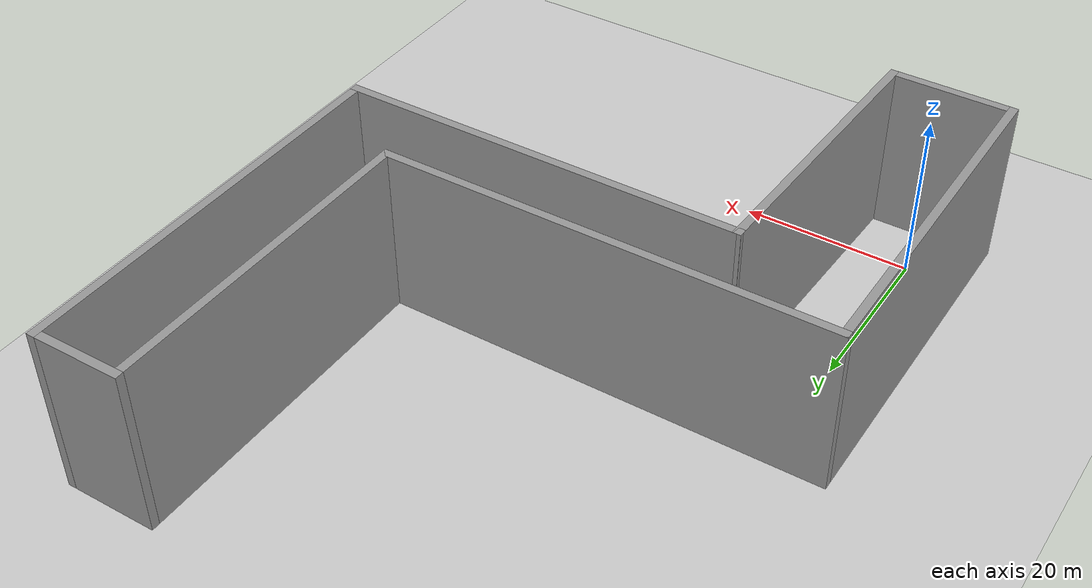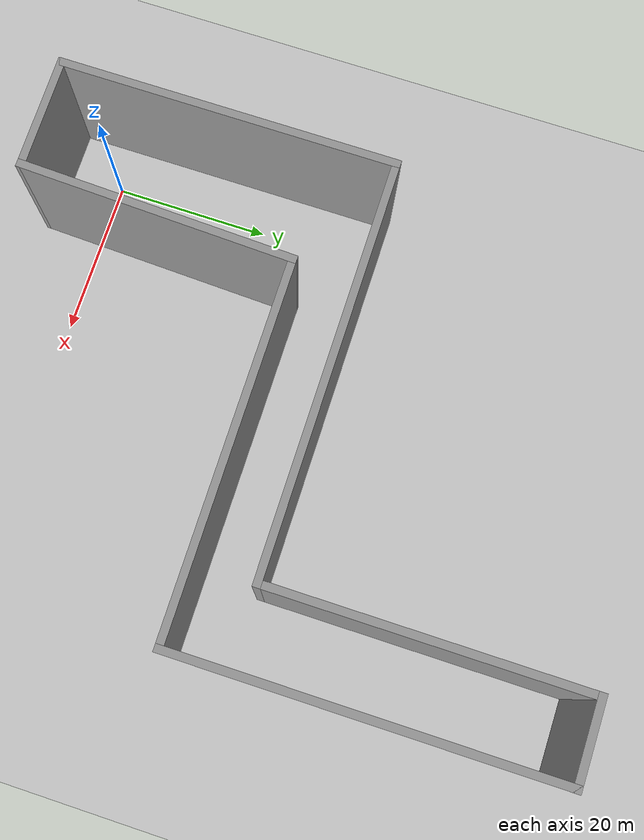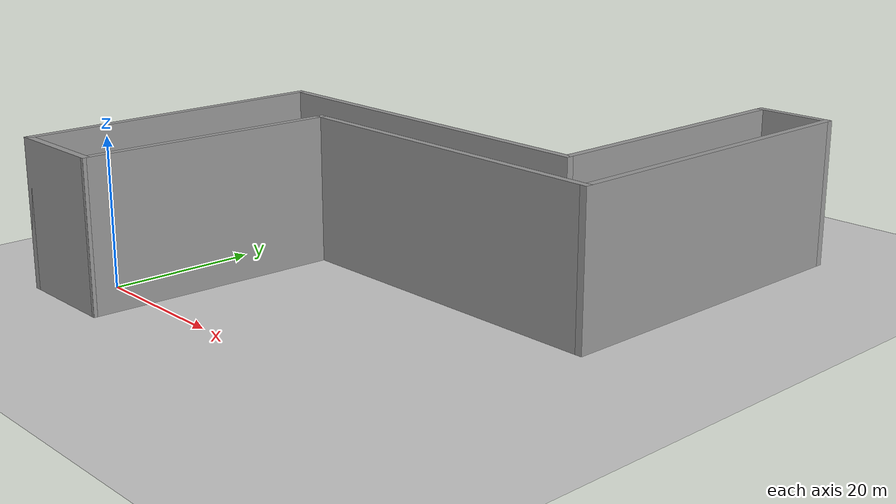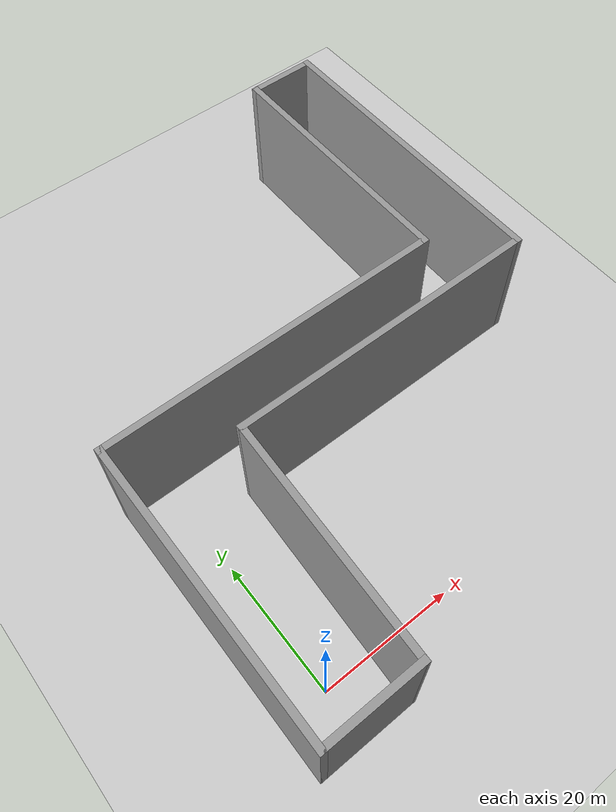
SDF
<sdf version="1.7">
 <world name="default">
  <light name="sun" type="directional">
   <pose>0 0 10 0 -0 0</pose>
   <diffuse>0.8 0.8 0.8 1</diffuse>
   <specular>0.2 0.2 0.2 1</specular>
   <attenuation>
    <range>1000</range>
    <constant>0.9</constant>
    <linear>0.01</linear>
    <quadratic>0.001</quadratic>
   </attenuation>
   <direction>-0.5 0.1 -0.9</direction>
   <spot><inner_angle>0</inner_angle><outer_angle>0</outer_angle><falloff>0</falloff></spot>
  </light>
  <model name="ground_plane">
   <static>1</static>
   <link name="link">
    <collision name="collision">
     <geometry><plane><normal>0 0 1</normal><size>100 100</size></plane></geometry>
     <surface><friction><ode><mu>100</mu><mu2>50</mu2></ode></friction></surface>
    </collision>
    <visual name="visual">
     <cast_shadows>0</cast_shadows>
     <geometry><plane><normal>0 0 1</normal><size>100 100</size></plane></geometry>
     <material>
      <script><uri>file://media/materials/scripts/gazebo.material</uri><name>Gazebo/Grey</name></script>
     </material>
    </visual>
   </link>
  </model>
  <gravity>0 0 -9.8</gravity>
  <magnetic_field>6e-06 2.3e-05 -4.2e-05</magnetic_field>
  <atmosphere type="adiabatic"/>
  <physics type="ode">
   <max_step_size>0.001</max_step_size>
   <real_time_factor>1</real_time_factor>
   <real_time_update_rate>1000</real_time_update_rate>
  </physics>
  <scene><ambient>0.4 0.4 0.4 1</ambient><background>0.7 0.7 0.7 1</background><shadows>1</shadows></scene>
  <audio><device>default</device></audio>
  <spherical_coordinates>
   <surface_model>EARTH_WGS84</surface_model>
   <latitude_deg>0</latitude_deg>
   <longitude_deg>0</longitude_deg>
   <elevation>0</elevation>
   <heading_deg>0</heading_deg>
  </spherical_coordinates>
  <model name="car">
   <link name="base_footprint">
    <inertial>
     <pose>0 0 0.198963 0 -0 0</pose>
     <mass>0.54</mass>
     <inertia>
      <ixx>0.0258787</ixx>
      <ixy>0</ixy>
      <ixz>1.35525e-20</ixz>
      <iyy>0.0261347</iyy>
      <iyz>0</iyz>
      <izz>0.022056</izz>
     </inertia>
    </inertial>
    <collision name="base_footprint_fixed_joint_lump__base_link_collision">
     <pose>0 0 0.092 0 -0 0</pose>
     <geometry><cylinder><length>0.12</length><radius>0.1</radius></cylinder></geometry>
    </collision>
    <collision name="base_footprint_fixed_joint_lump__laser_c_collision_1">
     <pose>0 0 0.306 0 -0 0</pose>
     <geometry><cylinder><length>0.1</length><radius>0.02</radius></cylinder></geometry>
    </collision>
    <collision name="base_footprint_fixed_joint_lump__laser_link_collision_2">
     <pose>0 0 0.466 0 -0 0</pose>
     <geometry><cylinder><length>0.02</length><radius>0.02</radius></cylinder></geometry>
    </collision>
    <collision name="base_footprint_fixed_joint_lump__caster_link_collision_3">
     <pose>0.08 0 0.016 1.57079 -0 0</pose>
     <geometry><sphere><radius>0.016</radius></sphere></geometry>
     <surface>
      <contact><ode><kp>1e+06</kp><kd>10</kd></ode></contact>
      <friction><ode><mu>0</mu><mu2>0</mu2></ode></friction>
     </surface>
    </collision>
    <collision name="base_footprint_fixed_joint_lump__caster_link2_collision_4">
     <pose>-0.08 0 0.016 1.57079 -0 0</pose>
     <geometry><sphere><radius>0.016</radius></sphere></geometry>
     <surface>
      <contact><ode><kp>1e+06</kp><kd>10</kd></ode></contact>
      <friction><ode><mu>0</mu><mu2>0</mu2></ode></friction>
     </surface>
    </collision>
    <collision name="base_footprint_fixed_joint_lump__imu_link_collision_5">
     <pose>0 0 0.112 0 -0 0</pose>
     <geometry><box><size>0.02 0.02 0.02</size></box></geometry>
    </collision>
    <visual name="base_footprint_fixed_joint_lump__base_link_visual">
     <pose>0 0 0.092 0 -0 0</pose>
     <geometry><cylinder><length>0.12</length><radius>0.1</radius></cylinder></geometry>
    </visual>
    <visual name="base_footprint_fixed_joint_lump__laser_c_visual_1">
     <pose>0 0 0.306 0 -0 0</pose>
     <geometry><cylinder><length>0.3</length><radius>0.02</radius></cylinder></geometry>
    </visual>
    <visual name="base_footprint_fixed_joint_lump__laser_link_visual_2">
     <pose>0 0 0.466 0 -0 0</pose>
     <geometry><cylinder><length>0.02</length><radius>0.02</radius></cylinder></geometry>
    </visual>
    <visual name="base_footprint_fixed_joint_lump__caster_link_visual_3">
     <pose>0.08 0 0.016 1.57079 -0 0</pose>
     <geometry><sphere><radius>0.016</radius></sphere></geometry>
    </visual>
    <visual name="base_footprint_fixed_joint_lump__caster_link2_visual_4">
     <pose>-0.08 0 0.016 1.57079 -0 0</pose>
     <geometry><sphere><radius>0.016</radius></sphere></geometry>
    </visual>
    <visual name="base_footprint_fixed_joint_lump__imu_link_visual_5">
     <pose>0 0 0.112 0 -0 0</pose>
     <geometry><box><size>0.02 0.02 0.02</size></box></geometry>
    </visual>
    <sensor name="laser_sensor" type="gpu_ray">
     <plugin name="laserscan" filename="libgazebo_ros_ray_sensor.so">
      <ros><namespace>/</namespace><remapping>~/out:=pointcloud_in</remapping></ros>
      <output_type>sensor_msgs/PointCloud2</output_type>
     </plugin>
     <always_on>1</always_on>
     <visualize>1</visualize>
     <update_rate>8</update_rate>
     <ray>
      <scan>
       <horizontal>
        <samples>120</samples>
        <resolution>1</resolution>
        <min_angle>0</min_angle>
        <max_angle>6.28</max_angle>
       </horizontal>
       <vertical>
        <samples>10</samples>
        <resolution>1</resolution>
        <min_angle>-0</min_angle>
        <max_angle>0.6</max_angle>
       </vertical>
      </scan>
      <range><min>0.3</min><max>50</max><resolution>0.015</resolution></range>
      <noise><type>gaussian</type><mean>0</mean><stddev>0.01</stddev></noise>
     </ray>
     <pose>0 0 0.466 0 -0 0</pose>
    </sensor>
    <sensor name="imu_sensor" type="imu">
     <plugin name="imu_plugin" filename="libgazebo_ros_imu_sensor.so">
      <ros><namespace>/</namespace><remapping>~/out:=imu</remapping></ros>
      <initial_orientation_as_reference>0</initial_orientation_as_reference>
     </plugin>
     <always_on>1</always_on>
     <update_rate>100</update_rate>
     <visualize>1</visualize>
     <imu>
      <angular_velocity>
       <x>
        <noise type="gaussian">
         <mean>0</mean>
         <stddev>0.0002</stddev>
         <bias_mean>7.5e-06</bias_mean>
         <bias_stddev>8e-07</bias_stddev>
        </noise>
       </x>
       <y>
        <noise type="gaussian">
         <mean>0</mean>
         <stddev>0.0002</stddev>
         <bias_mean>7.5e-06</bias_mean>
         <bias_stddev>8e-07</bias_stddev>
        </noise>
       </y>
       <z>
        <noise type="gaussian">
         <mean>0</mean>
         <stddev>0.0002</stddev>
         <bias_mean>7.5e-06</bias_mean>
         <bias_stddev>8e-07</bias_stddev>
        </noise>
       </z>
      </angular_velocity>
      <linear_acceleration>
       <x>
        <noise type="gaussian">
         <mean>0</mean>
         <stddev>0.017</stddev>
         <bias_mean>0.1</bias_mean>
         <bias_stddev>0.001</bias_stddev>
        </noise>
       </x>
       <y>
        <noise type="gaussian">
         <mean>0</mean>
         <stddev>0.017</stddev>
         <bias_mean>0.1</bias_mean>
         <bias_stddev>0.001</bias_stddev>
        </noise>
       </y>
       <z>
        <noise type="gaussian">
         <mean>0</mean>
         <stddev>0.017</stddev>
         <bias_mean>0.1</bias_mean>
         <bias_stddev>0.001</bias_stddev>
        </noise>
       </z>
      </linear_acceleration>
     </imu>
     <pose>0 0 0.112 0 -0 0</pose>
    </sensor>
   </link>
   <joint name="left_wheel_joint" type="revolute">
    <pose relative_to="base_footprint">-0.04 0.1 0.032 0 -0 0</pose>
    <parent>base_footprint</parent>
    <child>left_wheel_link</child>
    <axis>
     <xyz>0 1 0</xyz>
     <limit><lower>-1e+16</lower><upper>1e+16</upper></limit>
     <dynamics><spring_reference>0</spring_reference><spring_stiffness>0</spring_stiffness></dynamics>
    </axis>
   </joint>
   <link name="left_wheel_link">
    <pose relative_to="left_wheel_joint">0 0 0 0 -0 0</pose>
    <inertial>
     <mass>0.2</mass>
     <inertia>
      <ixx>0.000190417</ixx>
      <ixy>0</ixy>
      <ixz>0</ixz>
      <iyy>0.0001904</iyy>
      <iyz>0</iyz>
      <izz>0.00036</izz>
     </inertia>
    </inertial>
    <collision name="left_wheel_link_collision">
     <pose>0 0 0 1.57079 -0 0</pose>
     <geometry><cylinder><length>0.04</length><radius>0.032</radius></cylinder></geometry>
    </collision>
    <visual name="left_wheel_link_visual">
     <pose>0 0 0 1.57079 -0 0</pose>
     <geometry><cylinder><length>0.04</length><radius>0.032</radius></cylinder></geometry>
    </visual>
   </link>
   <joint name="right_wheel_joint" type="revolute">
    <pose relative_to="base_footprint">-0.04 -0.1 0.032 0 -0 0</pose>
    <parent>base_footprint</parent>
    <child>right_wheel_link</child>
    <axis>
     <xyz>0 1 0</xyz>
     <limit><lower>-1e+16</lower><upper>1e+16</upper></limit>
     <dynamics><spring_reference>0</spring_reference><spring_stiffness>0</spring_stiffness></dynamics>
    </axis>
   </joint>
   <link name="right_wheel_link">
    <pose relative_to="right_wheel_joint">0 0 0 0 -0 0</pose>
    <inertial>
     <mass>0.2</mass>
     <inertia>
      <ixx>0.000190417</ixx>
      <ixy>0</ixy>
      <ixz>0</ixz>
      <iyy>0.0001904</iyy>
      <iyz>0</iyz>
      <izz>0.00036</izz>
     </inertia>
    </inertial>
    <collision name="right_wheel_link_collision">
     <pose>0 0 0 1.57079 -0 0</pose>
     <geometry><cylinder><length>0.04</length><radius>0.032</radius></cylinder></geometry>
    </collision>
    <visual name="right_wheel_link_visual">
     <pose>0 0 0 1.57079 -0 0</pose>
     <geometry><cylinder><length>0.04</length><radius>0.032</radius></cylinder></geometry>
    </visual>
   </link>
   <static>0</static>
   <plugin name="diff_drive" filename="libgazebo_ros_diff_drive.so">
    <ros><namespace>/</namespace><remapping>cmd_vel:=cmd_vel</remapping><remapping>odom:=odom</remapping></ros>
    <update_rate>30</update_rate>
    <left_joint>left_wheel_joint</left_joint>
    <right_joint>right_wheel_joint</right_joint>
    <wheel_separation>0.2</wheel_separation>
    <wheel_diameter>0.065</wheel_diameter>
    <max_wheel_torque>20</max_wheel_torque>
    <max_wheel_acceleration>1.0</max_wheel_acceleration>
    <publish_odom>1</publish_odom>
    <publish_odom_tf>1</publish_odom_tf>
    <publish_wheel_tf>0</publish_wheel_tf>
    <odometry_frame>odom</odometry_frame>
    <robot_base_frame>base_footprint</robot_base_frame>
   </plugin>
   <pose>-1.2e-05 -3.3e-05 -1e-06 1e-06 1.4e-05 -0.000824</pose>
  </model>
  <model name="Untitled">
   <pose>24.683 33.5984 0 0 -0 0</pose>
   <link name="Wall_2">
    <collision name="Wall_2_Collision">
     <geometry><box><size>48.0996 1 20</size></box></geometry>
     <pose>0 0 10 0 -0 0</pose>
    </collision>
    <visual name="Wall_2_Visual">
     <pose>0 0 10 0 -0 0</pose>
     <geometry><box><size>48.0996 1 20</size></box></geometry>
     <material>
      <script><uri>file://media/materials/scripts/gazebo.material</uri><name>Gazebo/Grey</name></script>
      <ambient>1 1 1 1</ambient>
     </material>
     <meta><layer>0</layer></meta>
    </visual>
    <pose>7.55 -6.49058 0 0 -0 2.1e-05</pose>
   </link>
   <link name="Wall_3">
    <collision name="Wall_3_Collision">
     <geometry><box><size>48.3492 1 20</size></box></geometry>
     <pose>0 0 10 0 -0 0</pose>
    </collision>
    <visual name="Wall_3_Visual">
     <pose>0 0 10 0 -0 0</pose>
     <geometry><box><size>48.3492 1 20</size></box></geometry>
     <material>
      <script><uri>file://media/materials/scripts/gazebo.material</uri><name>Gazebo/Grey</name></script>
      <ambient>1 1 1 1</ambient>
     </material>
     <meta><layer>0</layer></meta>
    </visual>
    <pose>31.1 17.1844 0 0 -0 1.5708</pose>
   </link>
   <link name="Wall_4">
    <collision name="Wall_4_Collision">
     <geometry><box><size>11.1 1 20</size></box></geometry>
     <pose>0 0 10 0 -0 0</pose>
    </collision>
    <visual name="Wall_4_Visual">
     <pose>0 0 10 0 -0 0</pose>
     <geometry><box><size>11.1 1 20</size></box></geometry>
     <material>
      <script><uri>file://media/materials/scripts/gazebo.material</uri><name>Gazebo/Grey</name></script>
      <ambient>1 1 1 1</ambient>
     </material>
     <meta><layer>0</layer></meta>
    </visual>
    <pose>26.05 40.8589 0 0 -0 3.14159</pose>
   </link>
   <link name="Wall_5">
    <collision name="Wall_5_Collision">
     <geometry><box><size>40.35 1 20</size></box></geometry>
     <pose>0 0 10 0 -0 0</pose>
    </collision>
    <visual name="Wall_5_Visual">
     <pose>0 0 10 0 -0 0</pose>
     <geometry><box><size>40.35 1 20</size></box></geometry>
     <material>
      <script><uri>file://media/materials/scripts/gazebo.material</uri><name>Gazebo/Grey</name></script>
      <ambient>1 1 1 1</ambient>
     </material>
     <meta><layer>0</layer></meta>
    </visual>
    <pose>21 21.1839 0 0 -0 -1.5708</pose>
   </link>
   <link name="Wall_6">
    <collision name="Wall_6_Collision">
     <geometry><box><size>53.1 1 20</size></box></geometry>
     <pose>0 0 10 0 -0 0</pose>
    </collision>
    <visual name="Wall_6_Visual">
     <pose>0 0 10 0 -0 0</pose>
     <geometry><box><size>53.1 1 20</size></box></geometry>
     <material>
      <script><uri>file://media/materials/scripts/gazebo.material</uri><name>Gazebo/Grey</name></script>
      <ambient>1 1 1 1</ambient>
     </material>
     <meta><layer>0</layer></meta>
    </visual>
    <pose>-5.05 1.50892 0 0 -0 3.14159</pose>
   </link>
   <link name="Wall_7">
    <collision name="Wall_7_Collision">
     <geometry><box><size>43.35 1 20</size></box></geometry>
     <pose>0 0 10 0 -0 0</pose>
    </collision>
    <visual name="Wall_7_Visual">
     <pose>0 0 10 0 -0 0</pose>
     <geometry><box><size>43.35 1 20</size></box></geometry>
     <material>
      <script><uri>file://media/materials/scripts/gazebo.material</uri><name>Gazebo/Grey</name></script>
      <ambient>1 1 1 1</ambient>
     </material>
     <meta><layer>0</layer></meta>
    </visual>
    <pose>-31.1 -19.6661 0 0 -0 -1.5708</pose>
   </link>
   <link name="Wall_8">
    <collision name="Wall_8_Collision">
     <geometry><box><size>14.85 1 20</size></box></geometry>
     <pose>0 0 10 0 -0 0</pose>
    </collision>
    <visual name="Wall_8_Visual">
     <pose>0 0 10 0 -0 0</pose>
     <geometry><box><size>14.85 1 20</size></box></geometry>
     <material>
      <script><uri>file://media/materials/scripts/gazebo.material</uri><name>Gazebo/Grey</name></script>
      <ambient>1 1 1 1</ambient>
     </material>
     <meta><layer>0</layer></meta>
    </visual>
    <pose>-24.175 -40.8411 0 0 -0 0</pose>
   </link>
   <link name="Wall_9">
    <collision name="Wall_9_Collision">
     <geometry><box><size>35.3729 1 20</size></box></geometry>
     <pose>0 0 10 0 -0 0</pose>
    </collision>
    <visual name="Wall_9_Visual">
     <pose>0 0 10 0 -0 0</pose>
     <geometry><box><size>35.3729 1 20</size></box></geometry>
     <material>
      <script><uri>file://media/materials/scripts/gazebo.material</uri><name>Gazebo/Grey</name></script>
      <ambient>1 1 1 1</ambient>
     </material>
     <meta><layer>0</layer></meta>
    </visual>
    <pose>-16.625 -23.6661 0 0 -0 1.53442</pose>
   </link>
   <static>1</static>
  </model>
 </world>
</sdf>
